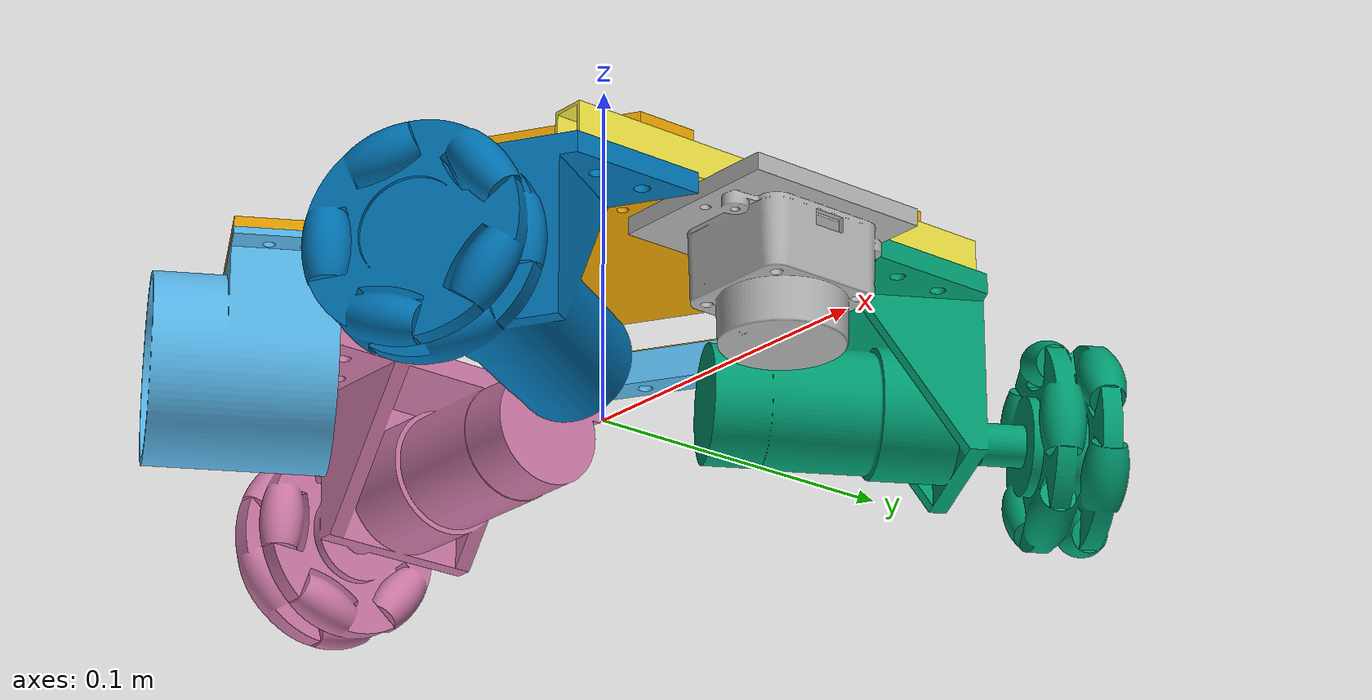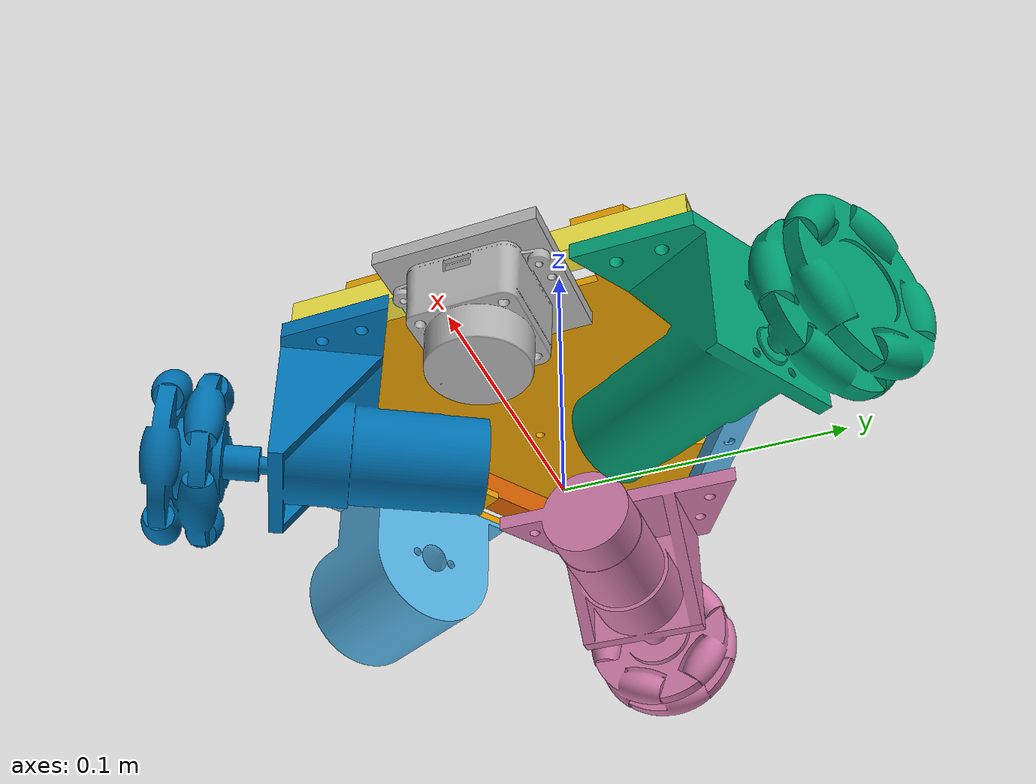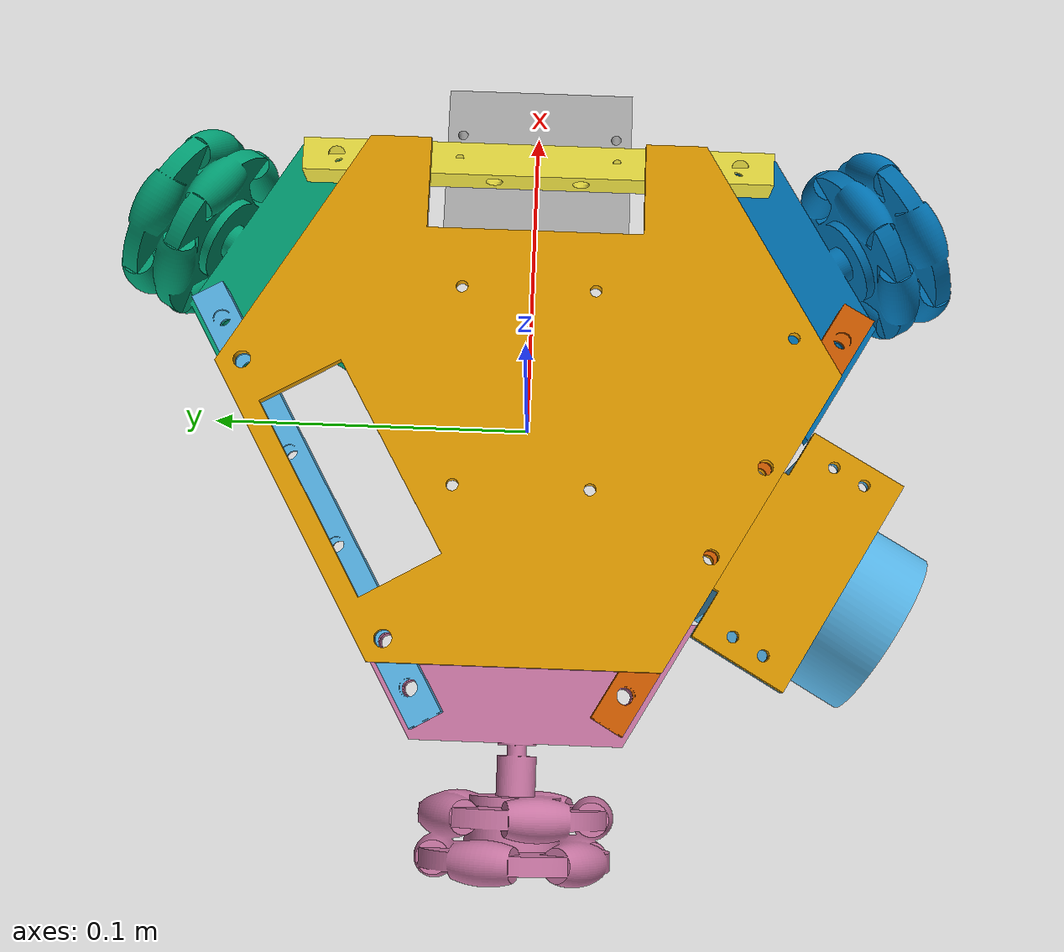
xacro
<?xml version="1.0"?>
<robot name="robot" xmlns:xacro="http://www.ros.org/wiki/xacro">

  <!-- インクルード -->
  <xacro:include filename="$(find yasarobo2025_26)/urdf/materials.xacro" />
  <xacro:include filename="$(find yasarobo2025_26)/urdf/robot.trans" />

  <link name="base_link">
  <inertial>
    <origin xyz="-0.0008546614468033811 -0.0045803537110478505 -0.0015000000000000239" rpy="0 0 0"/>
    <mass value="0.40518242543610605"/>
    <inertia ixx="0.000692" iyy="0.000603" izz="0.001295" ixy="-3.5e-05" iyz="-0.0" ixz="-0.0"/>
  </inertial>
  <visual>
    <origin xyz="0 0 0" rpy="0 0 0"/>
    <geometry>
      <mesh filename="file://$(find yasarobo2025_26)/meshes/base_link.stl" scale="0.001 0.001 0.001"/>
    </geometry>
    <material name="steel_satin"/>
  </visual>
  <collision>
    <origin xyz="0 0 0" rpy="0 0 0"/>
    <geometry>
      <mesh filename="file://$(find yasarobo2025_26)/meshes/base_link.stl" scale="0.001 0.001 0.001"/>
    </geometry>
  </collision>
</link>

<link name="alm_1_v4_1">
  <inertial>
    <origin xyz="-0.038971357377718556 -0.022500350269199804 -0.00499999999999999" rpy="0 0 0"/>
    <mass value="0.012994984167097644"/>
    <inertia ixx="6e-06" iyy="1.6e-05" izz="2.1e-05" ixy="-9e-06" iyz="-0.0" ixz="-0.0"/>
  </inertial>
  <visual>
    <origin xyz="-0.007243 -0.081923 0.003" rpy="0 0 0"/>
    <geometry>
      <mesh filename="file://$(find yasarobo2025_26)/meshes/alm_1_v4_1.stl" scale="0.001 0.001 0.001"/>
    </geometry>
    <material name="aluminum_satin"/>
  </visual>
  <collision>
    <origin xyz="-0.007243 -0.081923 0.003" rpy="0 0 0"/>
    <geometry>
      <mesh filename="file://$(find yasarobo2025_26)/meshes/alm_1_v4_1.stl" scale="0.001 0.001 0.001"/>
    </geometry>
  </collision>
</link>

<link name="chassis_unit_v18_1">
  <inertial>
    <origin xyz="0.02107279938591993 -0.023552949632407408 -0.02707795178986533" rpy="0 0 0"/>
    <mass value="0.8800381391052138"/>
    <inertia ixx="0.000678" iyy="0.00046" izz="0.000786" ixy="-0.000191" iyz="4e-06" ixz="3e-06"/>
  </inertial>
  <visual>
    <origin xyz="-0.020233 -0.089423 0.013" rpy="0 0 0"/>
    <geometry>
      <mesh filename="file://$(find yasarobo2025_26)/meshes/chassis_unit_v18_1.stl" scale="0.001 0.001 0.001"/>
    </geometry>
    <material name="steel_satin"/>
  </visual>
  <collision>
    <origin xyz="-0.020233 -0.089423 0.013" rpy="0 0 0"/>
    <geometry>
      <mesh filename="file://$(find yasarobo2025_26)/meshes/chassis_unit_v18_1.stl" scale="0.001 0.001 0.001"/>
    </geometry>
  </collision>
</link>

<link name="alm_with_lidar_v6_1">
  <inertial>
    <origin xyz="-3.089236015191288e-07 -0.06000035026918939 0.005000000000004555" rpy="0 0 0"/>
    <mass value="0.01289311174211968"/>
    <inertia ixx="2.1e-05" iyy="0.0" izz="2.1e-05" ixy="-0.0" iyz="0.0" ixz="-0.0"/>
  </inertial>
  <visual>
    <origin xyz="-0.072195 -0.059423 0.013" rpy="0 0 0"/>
    <geometry>
      <mesh filename="file://$(find yasarobo2025_26)/meshes/alm_with_lidar_v6_1.stl" scale="0.001 0.001 0.001"/>
    </geometry>
    <material name="aluminum_satin"/>
  </visual>
  <collision>
    <origin xyz="-0.072195 -0.059423 0.013" rpy="0 0 0"/>
    <geometry>
      <mesh filename="file://$(find yasarobo2025_26)/meshes/alm_with_lidar_v6_1.stl" scale="0.001 0.001 0.001"/>
    </geometry>
  </collision>
</link>

<link name="chassis_unit_v18_2">
  <inertial>
    <origin xyz="-0.0309054320622899 -0.006457122136964442 -0.02705226646111722" rpy="0 0 0"/>
    <mass value="0.8800381391052138"/>
    <inertia ixx="0.000678" iyy="0.000459" izz="0.000786" ixy="0.000191" iyz="-3e-06" ixz="2e-06"/>
  </inertial>
  <visual>
    <origin xyz="-0.072195 0.060577 0.013" rpy="0 0 0"/>
    <geometry>
      <mesh filename="file://$(find yasarobo2025_26)/meshes/chassis_unit_v18_2.stl" scale="0.001 0.001 0.001"/>
    </geometry>
    <material name="steel_satin"/>
  </visual>
  <collision>
    <origin xyz="-0.072195 0.060577 0.013" rpy="0 0 0"/>
    <geometry>
      <mesh filename="file://$(find yasarobo2025_26)/meshes/chassis_unit_v18_2.stl" scale="0.001 0.001 0.001"/>
    </geometry>
  </collision>
</link>

<link name="alm_1_v4_2">
  <inertial>
    <origin xyz="-0.05196135737773084 0.0299996497308002 0.005000000000000043" rpy="0 0 0"/>
    <mass value="0.012994984167097644"/>
    <inertia ixx="6e-06" iyy="1.6e-05" izz="2.1e-05" ixy="9e-06" iyz="0.0" ixz="-0.0"/>
  </inertial>
  <visual>
    <origin xyz="-0.020233 0.090577 0.013" rpy="0 0 0"/>
    <geometry>
      <mesh filename="file://$(find yasarobo2025_26)/meshes/alm_1_v4_2.stl" scale="0.001 0.001 0.001"/>
    </geometry>
    <material name="aluminum_satin"/>
  </visual>
  <collision>
    <origin xyz="-0.020233 0.090577 0.013" rpy="0 0 0"/>
    <geometry>
      <mesh filename="file://$(find yasarobo2025_26)/meshes/alm_1_v4_2.stl" scale="0.001 0.001 0.001"/>
    </geometry>
  </collision>
</link>

<link name="chassis_unit_v18_3">
  <inertial>
    <origin xyz="0.009860951500623896 -0.030007342590103164 -0.027052266461117254" rpy="0 0 0"/>
    <mass value="0.8800381391052138"/>
    <inertia ixx="0.000348" iyy="0.000788" izz="0.000786" ixy="-0.0" iyz="-0.0" ixz="-4e-06"/>
  </inertial>
  <visual>
    <origin xyz="0.08369 -0.029423 0.013" rpy="0 0 0"/>
    <geometry>
      <mesh filename="file://$(find yasarobo2025_26)/meshes/chassis_unit_v18_3.stl" scale="0.001 0.001 0.001"/>
    </geometry>
    <material name="steel_satin"/>
  </visual>
  <collision>
    <origin xyz="0.08369 -0.029423 0.013" rpy="0 0 0"/>
    <geometry>
      <mesh filename="file://$(find yasarobo2025_26)/meshes/chassis_unit_v18_3.stl" scale="0.001 0.001 0.001"/>
    </geometry>
  </collision>
</link>

<link name="LD19_with_mounter_v17_1">
  <inertial>
    <origin xyz="0.0014880718181120856 0.023425527493304784 -0.008834144488996753" rpy="0 0 0"/>
    <mass value="0.2090923090498693"/>
    <inertia ixx="6.4e-05" iyy="6.1e-05" izz="8.8e-05" ixy="0.0" iyz="-0.0" ixz="3e-06"/>
  </inertial>
  <visual>
    <origin xyz="-0.072195 0.023977 0.013" rpy="0 0 0"/>
    <geometry>
      <mesh filename="file://$(find yasarobo2025_26)/meshes/LD19_with_mounter_v17_1.stl" scale="0.001 0.001 0.001"/>
    </geometry>
    <material name="steel_satin"/>
  </visual>
  <collision>
    <origin xyz="-0.072195 0.023977 0.013" rpy="0 0 0"/>
    <geometry>
      <mesh filename="file://$(find yasarobo2025_26)/meshes/LD19_with_mounter_v17_1.stl" scale="0.001 0.001 0.001"/>
    </geometry>
  </collision>
</link>

<link name="fun_adapter_v2_1">
  <inertial>
    <origin xyz="0.0041713899627489545 -0.02277574396026466 -0.0014999999999999528" rpy="0 0 0"/>
    <mass value="0.06192959665605305"/>
    <inertia ixx="1.2e-05" iyy="1.8e-05" izz="3e-05" ixy="5e-06" iyz="0.0" ixz="0.0"/>
  </inertial>
  <visual>
    <origin xyz="0.044719 0.053077 0.013" rpy="0 0 0"/>
    <geometry>
      <mesh filename="file://$(find yasarobo2025_26)/meshes/fun_adapter_v2_1.stl" scale="0.001 0.001 0.001"/>
    </geometry>
    <material name="steel_satin"/>
  </visual>
  <collision>
    <origin xyz="0.044719 0.053077 0.013" rpy="0 0 0"/>
    <geometry>
      <mesh filename="file://$(find yasarobo2025_26)/meshes/fun_adapter_v2_1.stl" scale="0.001 0.001 0.001"/>
    </geometry>
  </collision>
</link>

<link name="fun_v13_1">
  <inertial>
    <origin xyz="0.0220222284081973 -0.019856013372210275 -0.02093589984865133" rpy="0 0 0"/>
    <mass value="0.3073161824855775"/>
    <inertia ixx="0.000152" iyy="0.00017" izz="0.00015" ixy="1.6e-05" iyz="-2e-06" ixz="-1e-06"/>
  </inertial>
  <visual>
    <origin xyz="0.065593 0.061233 0.016" rpy="0 0 0"/>
    <geometry>
      <mesh filename="file://$(find yasarobo2025_26)/meshes/fun_v13_1.stl" scale="0.001 0.001 0.001"/>
    </geometry>
    <material name="steel_satin"/>
  </visual>
  <collision>
    <origin xyz="0.065593 0.061233 0.016" rpy="0 0 0"/>
    <geometry>
      <mesh filename="file://$(find yasarobo2025_26)/meshes/fun_v13_1.stl" scale="0.001 0.001 0.001"/>
    </geometry>
  </collision>
</link>

  <joint name="Rigid 1" type="fixed">
  <origin xyz="0.007243 0.081923 -0.003" rpy="0 0 0"/>
  <parent link="base_link"/>
  <child link="alm_1_v4_1"/>
</joint>

<joint name="Rigid 2" type="fixed">
  <origin xyz="0.01299 0.0075 -0.01" rpy="0 0 0"/>
  <parent link="alm_1_v4_1"/>
  <child link="chassis_unit_v18_1"/>
</joint>

<joint name="Rigid 3" type="fixed">
  <origin xyz="0.051962 -0.03 0.0" rpy="0 0 0"/>
  <parent link="chassis_unit_v18_1"/>
  <child link="alm_with_lidar_v6_1"/>
</joint>

<joint name="Rigid 4" type="fixed">
  <origin xyz="0.0 -0.12 0.0" rpy="0 0 0"/>
  <parent link="alm_with_lidar_v6_1"/>
  <child link="chassis_unit_v18_2"/>
</joint>

<joint name="Rigid 5" type="fixed">
  <origin xyz="-0.051962 -0.03 0.0" rpy="0 0 0"/>
  <parent link="chassis_unit_v18_2"/>
  <child link="alm_1_v4_2"/>
</joint>

<joint name="Rigid 6" type="fixed">
  <origin xyz="-0.090933 -0.0525 -0.01" rpy="0 0 0"/>
  <parent link="alm_1_v4_1"/>
  <child link="chassis_unit_v18_3"/>
</joint>

<joint name="Rigid 10" type="fixed">
  <origin xyz="-0.064952 0.0375 0.0" rpy="0 0 0"/>
  <parent link="alm_1_v4_2"/>
  <child link="fun_adapter_v2_1"/>
</joint>

<joint name="Rigid 11" type="fixed">
  <origin xyz="-0.020874 -0.008156 -0.003" rpy="0 0 0"/>
  <parent link="fun_adapter_v2_1"/>
  <child link="fun_v13_1"/>
</joint>

<joint name="Rigid 13" type="fixed">
  <origin xyz="0.0 -0.0834 0.0" rpy="0 0 0"/>
  <parent link="alm_with_lidar_v6_1"/>
  <child link="LD19_with_mounter_v17_1"/>
</joint>

  <link name="base_footprint">
    <gazebo>
      <surface>
        <friction>
          <ode>
            <mu>1.0</mu>
            <mu2>1.0</mu2>
          </ode>
        </friction>
      </surface>
    </gazebo>
  </link>

  <joint name="base_joint" type="fixed">
    <parent link="base_footprint"/>
    <child  link="base_link"/>
    <origin xyz="0.0 0.0 0.05" rpy="0 0 0"/>
  </joint>

   <!-- LiDAR -->
  <link name="lidar_base"/>
  <joint name="lidar_joint" type="fixed">
    <parent link="base_link"/>
    <child  link="lidar_base"/>
    <origin xyz="0.0 0.0 -0.1" rpy="3.14 0 -2.09333"/>
  </joint>
  <gazebo reference="lidar_base">
    <sensor type="gpu_lidar" name="lidar_sensor">
      <ignition_frame_id>lidar_base</ignition_frame_id>
      <topic>/scan_back</topic>
      <alwaysOn>1</alwaysOn>
      <visualize>true</visualize>
      <update_rate>10</update_rate>
      <ray>
        <scan>
          <horizontal>
            <samples>360</samples>
            <resolution>1.0</resolution>
            <min_angle>-1.3</min_angle>
            <max_angle> 1.3</max_angle>
          </horizontal>
          <vertical>
            <samples>1</samples>
            <resolution>0.1</resolution>
            <min_angle>0.0</min_angle>
            <max_angle>0.0</max_angle>
          </vertical>
        </scan>
        <range>
          <min>0.02</min>
          <max>12.0</max>
          <resolution>0.015</resolution>
        </range>
      </ray>
      <plugin filename="libignition-gazebo-sensors-system.so" name="ignition::gazebo::systems::Sensors">
          <render_engine>ogre</render_engine>
      </plugin>
    </sensor>
  </gazebo>

  <gazebo>
    <plugin filename="libignition-gazebo-velocity-control-system.so"
            name="ignition::gazebo::systems::VelocityControl">
      <topic>/cmd_vel</topic>
    </plugin>
    <plugin filename="libignition-gazebo-odometry-publisher-system.so"
          name="ignition::gazebo::systems::OdometryPublisher">

    <odom_frame>odom</odom_frame>
    <robot_base_frame>base_footprint</robot_base_frame>
    <odom_publish_frequency>10</odom_publish_frequency>
    <odom_topic>/odom</odom_topic>
    <tf_topic>/tf</tf_topic>
    <dimensions>2</dimensions>
    <gaussian_noise>0.0</gaussian_noise>
    </plugin>
  </gazebo>

</robot>
